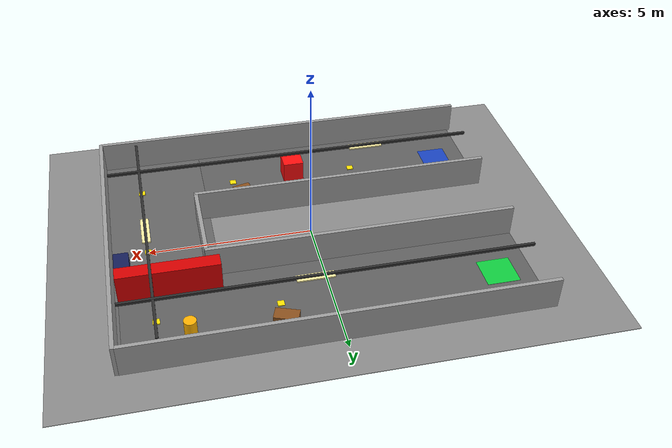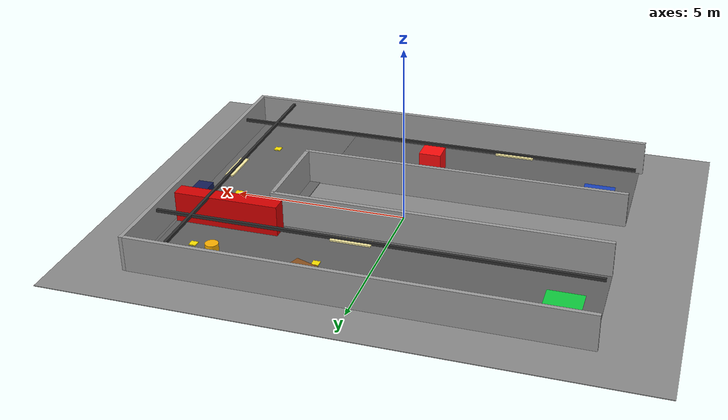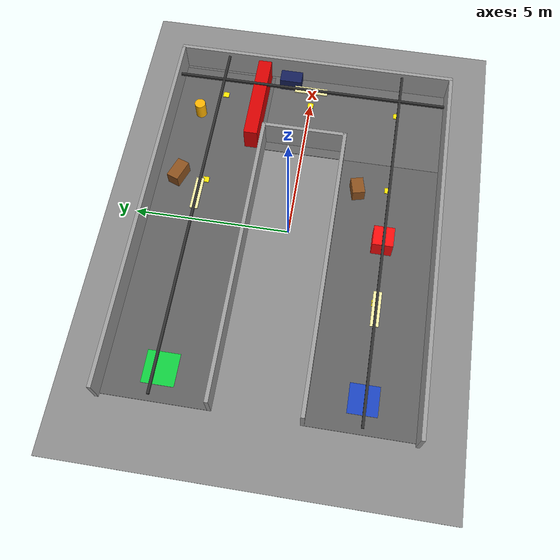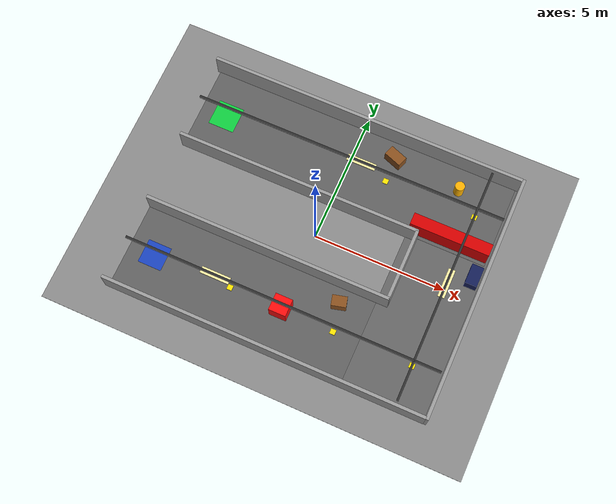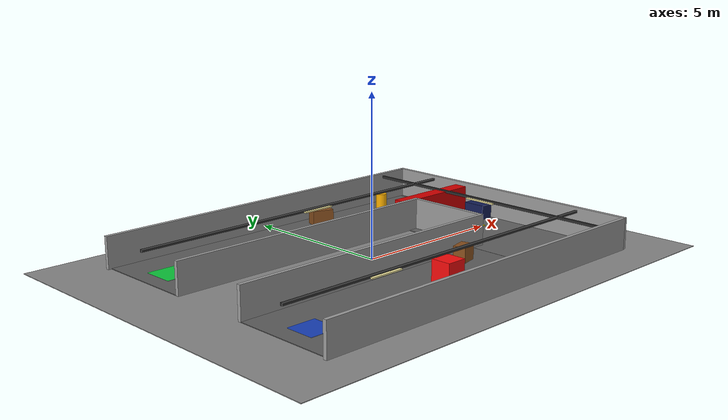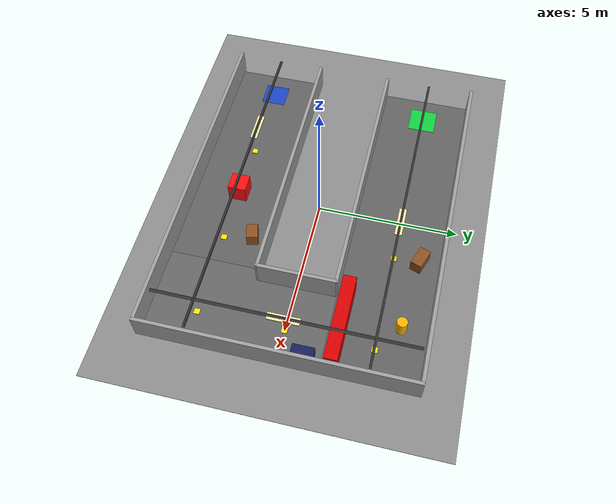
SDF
<sdf version='1.9'>
  <world name='shipyard_corridor_u_blocked'>
    <physics name='1ms' type='ignored'>
      <max_step_size>0.001</max_step_size>
      <real_time_factor>1</real_time_factor>
      <real_time_update_rate>1000</real_time_update_rate>
    </physics>
    <plugin name='ignition::gazebo::systems::Physics' filename='ignition-gazebo-physics-system'/>
    <plugin name='ignition::gazebo::systems::UserCommands' filename='ignition-gazebo-user-commands-system'/>
    <plugin name='ignition::gazebo::systems::SceneBroadcaster' filename='ignition-gazebo-scene-broadcaster-system'/>
    <plugin name='ignition::gazebo::systems::Sensors' filename='libignition-gazebo-sensors-system.so'>
      <render_engine>ogre2</render_engine>
    </plugin>
    <plugin name='ignition::gazebo::systems::Imu' filename='libignition-gazebo-imu-system.so'/>
    <gravity>0 0 -9.8</gravity>
    <magnetic_field>6e-06 2.3e-05 -4.2e-05</magnetic_field>
    <atmosphere type='adiabatic'/>
    <scene>
      <ambient>0.4 0.4 0.4 1</ambient>
      <background>0.7 0.7 0.7 1</background>
      <shadows>true</shadows>
    </scene>
    <model name='facility_floor'>
      <static>true</static>
      <pose>0 0 -0.01 0 -0 0</pose>
      <link name='link'>
        <collision name='collision'>
          <geometry>
            <box>
              <size>16 12 0.02</size>
            </box>
          </geometry>
          <surface>
            <friction>
              <ode/>
            </friction>
            <bounce/>
            <contact/>
          </surface>
        </collision>
        <visual name='visual'>
          <geometry>
            <box>
              <size>16 12 0.02</size>
            </box>
          </geometry>
          <material>
            <ambient>0.55 0.55 0.55 1</ambient>
            <diffuse>0.55 0.55 0.55 1</diffuse>
          </material>
        </visual>
        <pose>0 0 0 0 -0 0</pose>
        <inertial>
          <pose>0 0 0 0 -0 0</pose>
          <mass>1</mass>
          <inertia>
            <ixx>1</ixx>
            <ixy>0</ixy>
            <ixz>0</ixz>
            <iyy>1</iyy>
            <iyz>0</iyz>
            <izz>1</izz>
          </inertia>
        </inertial>
        <enable_wind>false</enable_wind>
      </link>
      <self_collide>false</self_collide>
    </model>
    <model name='bottom_corridor_floor'>
      <static>true</static>
      <pose>0 -3 0.005 0 -0 0</pose>
      <link name='link'>
        <collision name='collision'>
          <geometry>
            <box>
              <size>12 3.2 0.03</size>
            </box>
          </geometry>
          <surface>
            <friction>
              <ode/>
            </friction>
            <bounce/>
            <contact/>
          </surface>
        </collision>
        <visual name='visual'>
          <geometry>
            <box>
              <size>12 3.2 0.03</size>
            </box>
          </geometry>
          <material>
            <ambient>0.38 0.38 0.38 1</ambient>
            <diffuse>0.38 0.38 0.38 1</diffuse>
          </material>
        </visual>
        <pose>0 0 0 0 -0 0</pose>
        <inertial>
          <pose>0 0 0 0 -0 0</pose>
          <mass>1</mass>
          <inertia>
            <ixx>1</ixx>
            <ixy>0</ixy>
            <ixz>0</ixz>
            <iyy>1</iyy>
            <iyz>0</iyz>
            <izz>1</izz>
          </inertia>
        </inertial>
        <enable_wind>false</enable_wind>
      </link>
      <self_collide>false</self_collide>
    </model>
    <model name='right_turn_corridor_floor'>
      <static>true</static>
      <pose>4.57304 0 0.006 0 -0 0</pose>
      <link name='link'>
        <collision name='collision'>
          <geometry>
            <box>
              <size>3.2 9.2 0.03</size>
            </box>
          </geometry>
          <surface>
            <friction>
              <ode/>
            </friction>
            <bounce/>
            <contact/>
          </surface>
        </collision>
        <visual name='visual'>
          <geometry>
            <box>
              <size>3.2 9.2 0.03</size>
            </box>
          </geometry>
          <material>
            <ambient>0.4 0.4 0.4 1</ambient>
            <diffuse>0.4 0.4 0.4 1</diffuse>
          </material>
        </visual>
        <pose>0 0 0 0 -0 0</pose>
        <inertial>
          <pose>0 0 0 0 -0 0</pose>
          <mass>1</mass>
          <inertia>
            <ixx>1</ixx>
            <ixy>0</ixy>
            <ixz>0</ixz>
            <iyy>1</iyy>
            <iyz>0</iyz>
            <izz>1</izz>
          </inertia>
        </inertial>
        <enable_wind>false</enable_wind>
      </link>
      <self_collide>false</self_collide>
    </model>
    <model name='top_corridor_floor'>
      <static>true</static>
      <pose>0 3 0.007 0 -0 0</pose>
      <link name='link'>
        <collision name='collision'>
          <geometry>
            <box>
              <size>12 3.2 0.03</size>
            </box>
          </geometry>
          <surface>
            <friction>
              <ode/>
            </friction>
            <bounce/>
            <contact/>
          </surface>
        </collision>
        <visual name='visual'>
          <geometry>
            <box>
              <size>12 3.2 0.03</size>
            </box>
          </geometry>
          <material>
            <ambient>0.38 0.38 0.38 1</ambient>
            <diffuse>0.38 0.38 0.38 1</diffuse>
          </material>
        </visual>
        <pose>0 0 0 0 -0 0</pose>
        <inertial>
          <pose>0 0 0 0 -0 0</pose>
          <mass>1</mass>
          <inertia>
            <ixx>1</ixx>
            <ixy>0</ixy>
            <ixz>0</ixz>
            <iyy>1</iyy>
            <iyz>0</iyz>
            <izz>1</izz>
          </inertia>
        </inertial>
        <enable_wind>false</enable_wind>
      </link>
      <self_collide>false</self_collide>
    </model>
    <model name='bottom_outer_wall'>
      <static>true</static>
      <pose>0 -4.65 0.5 0 -0 0</pose>
      <link name='link'>
        <collision name='collision'>
          <geometry>
            <box>
              <size>12.2 0.12 1</size>
            </box>
          </geometry>
          <surface>
            <friction>
              <ode/>
            </friction>
            <bounce/>
            <contact/>
          </surface>
        </collision>
        <visual name='visual'>
          <geometry>
            <box>
              <size>12.2 0.12 1</size>
            </box>
          </geometry>
          <material>
            <ambient>0.62 0.62 0.62 1</ambient>
            <diffuse>0.62 0.62 0.62 1</diffuse>
          </material>
        </visual>
        <pose>0 0 0 0 -0 0</pose>
        <inertial>
          <pose>0 0 0 0 -0 0</pose>
          <mass>1</mass>
          <inertia>
            <ixx>1</ixx>
            <ixy>0</ixy>
            <ixz>0</ixz>
            <iyy>1</iyy>
            <iyz>0</iyz>
            <izz>1</izz>
          </inertia>
        </inertial>
        <enable_wind>false</enable_wind>
      </link>
      <self_collide>false</self_collide>
    </model>
    <model name='bottom_inner_wall'>
      <static>true</static>
      <pose>-1.3 -1.35 0.5 0 -0 0</pose>
      <link name='link'>
        <collision name='collision'>
          <geometry>
            <box>
              <size>9.4 0.12 1</size>
            </box>
          </geometry>
          <surface>
            <friction>
              <ode/>
            </friction>
            <bounce/>
            <contact/>
          </surface>
        </collision>
        <visual name='visual'>
          <geometry>
            <box>
              <size>9.4 0.12 1</size>
            </box>
          </geometry>
          <material>
            <ambient>0.62 0.62 0.62 1</ambient>
            <diffuse>0.62 0.62 0.62 1</diffuse>
          </material>
        </visual>
        <pose>0 0 0 0 -0 0</pose>
        <inertial>
          <pose>0 0 0 0 -0 0</pose>
          <mass>1</mass>
          <inertia>
            <ixx>1</ixx>
            <ixy>0</ixy>
            <ixz>0</ixz>
            <iyy>1</iyy>
            <iyz>0</iyz>
            <izz>1</izz>
          </inertia>
        </inertial>
        <enable_wind>false</enable_wind>
      </link>
      <self_collide>false</self_collide>
    </model>
    <model name='right_outer_wall'>
      <static>true</static>
      <pose>6.14462 0 0.5 0 -0 0</pose>
      <link name='link'>
        <collision name='collision'>
          <geometry>
            <box>
              <size>0.12 9.4 1</size>
            </box>
          </geometry>
          <surface>
            <friction>
              <ode/>
            </friction>
            <bounce/>
            <contact/>
          </surface>
        </collision>
        <visual name='visual'>
          <geometry>
            <box>
              <size>0.12 9.4 1</size>
            </box>
          </geometry>
          <material>
            <ambient>0.62 0.62 0.62 1</ambient>
            <diffuse>0.62 0.62 0.62 1</diffuse>
          </material>
        </visual>
        <pose>0 0 0 0 -0 0</pose>
        <inertial>
          <pose>0 0 0 0 -0 0</pose>
          <mass>1</mass>
          <inertia>
            <ixx>1</ixx>
            <ixy>0</ixy>
            <ixz>0</ixz>
            <iyy>1</iyy>
            <iyz>0</iyz>
            <izz>1</izz>
          </inertia>
        </inertial>
        <enable_wind>false</enable_wind>
      </link>
      <self_collide>false</self_collide>
    </model>
    <model name='right_inner_wall'>
      <static>true</static>
      <pose>3.35 0 0.5 0 -0 0</pose>
      <link name='link'>
        <collision name='collision'>
          <geometry>
            <box>
              <size>0.12 2.7 1</size>
            </box>
          </geometry>
          <surface>
            <friction>
              <ode/>
            </friction>
            <bounce/>
            <contact/>
          </surface>
        </collision>
        <visual name='visual'>
          <geometry>
            <box>
              <size>0.12 2.7 1</size>
            </box>
          </geometry>
          <material>
            <ambient>0.62 0.62 0.62 1</ambient>
            <diffuse>0.62 0.62 0.62 1</diffuse>
          </material>
        </visual>
        <pose>0 0 0 0 -0 0</pose>
        <inertial>
          <pose>0 0 0 0 -0 0</pose>
          <mass>1</mass>
          <inertia>
            <ixx>1</ixx>
            <ixy>0</ixy>
            <ixz>0</ixz>
            <iyy>1</iyy>
            <iyz>0</iyz>
            <izz>1</izz>
          </inertia>
        </inertial>
        <enable_wind>false</enable_wind>
      </link>
      <self_collide>false</self_collide>
    </model>
    <model name='top_inner_wall'>
      <static>true</static>
      <pose>-1.3 1.35 0.5 0 -0 0</pose>
      <link name='link'>
        <collision name='collision'>
          <geometry>
            <box>
              <size>9.4 0.12 1</size>
            </box>
          </geometry>
          <surface>
            <friction>
              <ode/>
            </friction>
            <bounce/>
            <contact/>
          </surface>
        </collision>
        <visual name='visual'>
          <geometry>
            <box>
              <size>9.4 0.12 1</size>
            </box>
          </geometry>
          <material>
            <ambient>0.62 0.62 0.62 1</ambient>
            <diffuse>0.62 0.62 0.62 1</diffuse>
          </material>
        </visual>
        <pose>0 0 0 0 -0 0</pose>
        <inertial>
          <pose>0 0 0 0 -0 0</pose>
          <mass>1</mass>
          <inertia>
            <ixx>1</ixx>
            <ixy>0</ixy>
            <ixz>0</ixz>
            <iyy>1</iyy>
            <iyz>0</iyz>
            <izz>1</izz>
          </inertia>
        </inertial>
        <enable_wind>false</enable_wind>
      </link>
      <self_collide>false</self_collide>
    </model>
    <model name='top_outer_wall'>
      <static>true</static>
      <pose>0 4.65 0.5 0 -0 0</pose>
      <link name='link'>
        <collision name='collision'>
          <geometry>
            <box>
              <size>12.2 0.12 1</size>
            </box>
          </geometry>
          <surface>
            <friction>
              <ode/>
            </friction>
            <bounce/>
            <contact/>
          </surface>
        </collision>
        <visual name='visual'>
          <geometry>
            <box>
              <size>12.2 0.12 1</size>
            </box>
          </geometry>
          <material>
            <ambient>0.62 0.62 0.62 1</ambient>
            <diffuse>0.62 0.62 0.62 1</diffuse>
          </material>
        </visual>
        <pose>0 0 0 0 -0 0</pose>
        <inertial>
          <pose>0 0 0 0 -0 0</pose>
          <mass>1</mass>
          <inertia>
            <ixx>1</ixx>
            <ixy>0</ixy>
            <ixz>0</ixz>
            <iyy>1</iyy>
            <iyz>0</iyz>
            <izz>1</izz>
          </inertia>
        </inertial>
        <enable_wind>false</enable_wind>
      </link>
      <self_collide>false</self_collide>
    </model>
    <model name='overhead_lighting_group'>
      <static>true</static>
      <pose>0 0 -0.449196 0 -0 0</pose>
      <link name='overhead_beam_bottom'>
        <pose>0 -3 1.35 0 -0 0</pose>
        <visual name='visual'>
          <geometry>
            <box>
              <size>12 0.08 0.08</size>
            </box>
          </geometry>
          <material>
            <ambient>0.18 0.18 0.18 1</ambient>
            <diffuse>0.18 0.18 0.18 1</diffuse>
          </material>
        </visual>
        <inertial>
          <pose>0 0 0 0 -0 0</pose>
          <mass>1</mass>
          <inertia>
            <ixx>1</ixx>
            <ixy>0</ixy>
            <ixz>0</ixz>
            <iyy>1</iyy>
            <iyz>0</iyz>
            <izz>1</izz>
          </inertia>
        </inertial>
        <enable_wind>false</enable_wind>
      </link>
      <link name='overhead_beam_vertical'>
        <pose>5 0 1.35 0 -0 1.5708</pose>
        <visual name='visual'>
          <geometry>
            <box>
              <size>9 0.08 0.08</size>
            </box>
          </geometry>
          <material>
            <ambient>0.18 0.18 0.18 1</ambient>
            <diffuse>0.18 0.18 0.18 1</diffuse>
          </material>
        </visual>
        <inertial>
          <pose>0 0 0 0 -0 0</pose>
          <mass>1</mass>
          <inertia>
            <ixx>1</ixx>
            <ixy>0</ixy>
            <ixz>0</ixz>
            <iyy>1</iyy>
            <iyz>0</iyz>
            <izz>1</izz>
          </inertia>
        </inertial>
        <enable_wind>false</enable_wind>
      </link>
      <link name='overhead_beam_top'>
        <pose>0 3 1.35 0 -0 0</pose>
        <visual name='visual'>
          <geometry>
            <box>
              <size>12 0.08 0.08</size>
            </box>
          </geometry>
          <material>
            <ambient>0.18 0.18 0.18 1</ambient>
            <diffuse>0.18 0.18 0.18 1</diffuse>
          </material>
        </visual>
        <inertial>
          <pose>0 0 0 0 -0 0</pose>
          <mass>1</mass>
          <inertia>
            <ixx>1</ixx>
            <ixy>0</ixy>
            <ixz>0</ixz>
            <iyy>1</iyy>
            <iyz>0</iyz>
            <izz>1</izz>
          </inertia>
        </inertial>
        <enable_wind>false</enable_wind>
      </link>
      <link name='light_panel_1'>
        <pose>-2.5 -3 1.32 0 -0 0</pose>
        <visual name='visual'>
          <geometry>
            <box>
              <size>1.1 0.25 0.04</size>
            </box>
          </geometry>
          <material>
            <ambient>1 0.95 0.65 1</ambient>
            <diffuse>1 0.95 0.65 1</diffuse>
          </material>
        </visual>
        <inertial>
          <pose>0 0 0 0 -0 0</pose>
          <mass>1</mass>
          <inertia>
            <ixx>1</ixx>
            <ixy>0</ixy>
            <ixz>0</ixz>
            <iyy>1</iyy>
            <iyz>0</iyz>
            <izz>1</izz>
          </inertia>
        </inertial>
        <enable_wind>false</enable_wind>
      </link>
      <link name='light_panel_2'>
        <pose>5 0 1.32 0 -0 1.5708</pose>
        <visual name='visual'>
          <geometry>
            <box>
              <size>1.1 0.25 0.04</size>
            </box>
          </geometry>
          <material>
            <ambient>1 0.95 0.65 1</ambient>
            <diffuse>1 0.95 0.65 1</diffuse>
          </material>
        </visual>
        <inertial>
          <pose>0 0 0 0 -0 0</pose>
          <mass>1</mass>
          <inertia>
            <ixx>1</ixx>
            <ixy>0</ixy>
            <ixz>0</ixz>
            <iyy>1</iyy>
            <iyz>0</iyz>
            <izz>1</izz>
          </inertia>
        </inertial>
        <enable_wind>false</enable_wind>
      </link>
      <link name='light_panel_3'>
        <pose>0.5 3 1.32 0 -0 0</pose>
        <visual name='visual'>
          <geometry>
            <box>
              <size>1.1 0.25 0.04</size>
            </box>
          </geometry>
          <material>
            <ambient>1 0.95 0.65 1</ambient>
            <diffuse>1 0.95 0.65 1</diffuse>
          </material>
        </visual>
        <inertial>
          <pose>0 0 0 0 -0 0</pose>
          <mass>1</mass>
          <inertia>
            <ixx>1</ixx>
            <ixy>0</ixy>
            <ixz>0</ixz>
            <iyy>1</iyy>
            <iyz>0</iyz>
            <izz>1</izz>
          </inertia>
        </inertial>
        <enable_wind>false</enable_wind>
      </link>
      <self_collide>false</self_collide>
    </model>
    <model name='start_zone_marker'>
      <static>true</static>
      <pose>-5 -3 0.025 0 -0 0</pose>
      <link name='link'>
        <visual name='visual'>
          <geometry>
            <box>
              <size>0.9 0.9 0.02</size>
            </box>
          </geometry>
          <material>
            <ambient>0 0.25 1 0.65</ambient>
            <diffuse>0 0.25 1 0.65</diffuse>
          </material>
        </visual>
        <pose>0 0 0 0 -0 0</pose>
        <inertial>
          <pose>0 0 0 0 -0 0</pose>
          <mass>1</mass>
          <inertia>
            <ixx>1</ixx>
            <ixy>0</ixy>
            <ixz>0</ixz>
            <iyy>1</iyy>
            <iyz>0</iyz>
            <izz>1</izz>
          </inertia>
        </inertial>
        <enable_wind>false</enable_wind>
      </link>
      <self_collide>false</self_collide>
    </model>
    <model name='inspection_endpoint_marker'>
      <static>true</static>
      <pose>-5 3 0.025 0 -0 0</pose>
      <link name='link'>
        <visual name='visual'>
          <geometry>
            <box>
              <size>1 1 0.02</size>
            </box>
          </geometry>
          <material>
            <ambient>0 1 0.25 0.75</ambient>
            <diffuse>0 1 0.25 0.75</diffuse>
          </material>
        </visual>
        <pose>0 0 0 0 -0 0</pose>
        <inertial>
          <pose>0 0 0 0 -0 0</pose>
          <mass>1</mass>
          <inertia>
            <ixx>1</ixx>
            <ixy>0</ixy>
            <ixz>0</ixz>
            <iyy>1</iyy>
            <iyz>0</iyz>
            <izz>1</izz>
          </inertia>
        </inertial>
        <enable_wind>false</enable_wind>
      </link>
      <self_collide>false</self_collide>
    </model>
    <model name='wp_1'>
      <static>true</static>
      <pose>-2 -3 0.035 0 -0 0</pose>
      <link name='link'>
        <visual name='visual'>
          <geometry>
            <box>
              <size>0.2 0.2 0.03</size>
            </box>
          </geometry>
          <material>
            <ambient>1 0.9 0 1</ambient>
            <diffuse>1 0.9 0 1</diffuse>
          </material>
        </visual>
        <pose>0 0 0 0 -0 0</pose>
        <inertial>
          <pose>0 0 0 0 -0 0</pose>
          <mass>1</mass>
          <inertia>
            <ixx>1</ixx>
            <ixy>0</ixy>
            <ixz>0</ixz>
            <iyy>1</iyy>
            <iyz>0</iyz>
            <izz>1</izz>
          </inertia>
        </inertial>
        <enable_wind>false</enable_wind>
      </link>
      <self_collide>false</self_collide>
    </model>
    <model name='wp_2'>
      <static>true</static>
      <pose>2 -3 0.035 0 -0 0</pose>
      <link name='link'>
        <visual name='visual'>
          <geometry>
            <box>
              <size>0.2 0.2 0.03</size>
            </box>
          </geometry>
          <material>
            <ambient>1 0.9 0 1</ambient>
            <diffuse>1 0.9 0 1</diffuse>
          </material>
        </visual>
        <pose>0 0 0 0 -0 0</pose>
        <inertial>
          <pose>0 0 0 0 -0 0</pose>
          <mass>1</mass>
          <inertia>
            <ixx>1</ixx>
            <ixy>0</ixy>
            <ixz>0</ixz>
            <iyy>1</iyy>
            <iyz>0</iyz>
            <izz>1</izz>
          </inertia>
        </inertial>
        <enable_wind>false</enable_wind>
      </link>
      <self_collide>false</self_collide>
    </model>
    <model name='wp_3_turn'>
      <static>true</static>
      <pose>5 -3 0.035 0 -0 0</pose>
      <link name='link'>
        <visual name='visual'>
          <geometry>
            <box>
              <size>0.2 0.2 0.03</size>
            </box>
          </geometry>
          <material>
            <ambient>1 0.9 0 1</ambient>
            <diffuse>1 0.9 0 1</diffuse>
          </material>
        </visual>
        <pose>0 0 0 0 -0 0</pose>
        <inertial>
          <pose>0 0 0 0 -0 0</pose>
          <mass>1</mass>
          <inertia>
            <ixx>1</ixx>
            <ixy>0</ixy>
            <ixz>0</ixz>
            <iyy>1</iyy>
            <iyz>0</iyz>
            <izz>1</izz>
          </inertia>
        </inertial>
        <enable_wind>false</enable_wind>
      </link>
      <self_collide>false</self_collide>
    </model>
    <model name='wp_4'>
      <static>true</static>
      <pose>5 0 0.035 0 -0 0</pose>
      <link name='link'>
        <visual name='visual'>
          <geometry>
            <box>
              <size>0.2 0.2 0.03</size>
            </box>
          </geometry>
          <material>
            <ambient>1 0.9 0 1</ambient>
            <diffuse>1 0.9 0 1</diffuse>
          </material>
        </visual>
        <pose>0 0 0 0 -0 0</pose>
        <inertial>
          <pose>0 0 0 0 -0 0</pose>
          <mass>1</mass>
          <inertia>
            <ixx>1</ixx>
            <ixy>0</ixy>
            <ixz>0</ixz>
            <iyy>1</iyy>
            <iyz>0</iyz>
            <izz>1</izz>
          </inertia>
        </inertial>
        <enable_wind>false</enable_wind>
      </link>
      <self_collide>false</self_collide>
    </model>
    <model name='wp_5_turn'>
      <static>true</static>
      <pose>5 3 0.035 0 -0 0</pose>
      <link name='link'>
        <visual name='visual'>
          <geometry>
            <box>
              <size>0.2 0.2 0.03</size>
            </box>
          </geometry>
          <material>
            <ambient>1 0.9 0 1</ambient>
            <diffuse>1 0.9 0 1</diffuse>
          </material>
        </visual>
        <pose>0 0 0 0 -0 0</pose>
        <inertial>
          <pose>0 0 0 0 -0 0</pose>
          <mass>1</mass>
          <inertia>
            <ixx>1</ixx>
            <ixy>0</ixy>
            <ixz>0</ixz>
            <iyy>1</iyy>
            <iyz>0</iyz>
            <izz>1</izz>
          </inertia>
        </inertial>
        <enable_wind>false</enable_wind>
      </link>
      <self_collide>false</self_collide>
    </model>
    <model name='wp_6'>
      <static>true</static>
      <pose>1.5 3 0.035 0 -0 0</pose>
      <link name='link'>
        <visual name='visual'>
          <geometry>
            <box>
              <size>0.2 0.2 0.03</size>
            </box>
          </geometry>
          <material>
            <ambient>1 0.9 0 1</ambient>
            <diffuse>1 0.9 0 1</diffuse>
          </material>
        </visual>
        <pose>0 0 0 0 -0 0</pose>
        <inertial>
          <pose>0 0 0 0 -0 0</pose>
          <mass>1</mass>
          <inertia>
            <ixx>1</ixx>
            <ixy>0</ixy>
            <ixz>0</ixz>
            <iyy>1</iyy>
            <iyz>0</iyz>
            <izz>1</izz>
          </inertia>
        </inertial>
        <enable_wind>false</enable_wind>
      </link>
      <self_collide>false</self_collide>
    </model>
    <model name='avoidable_obstruction_red_block'>
      <static>true</static>
      <pose>0 -3 0.35 0 -0 0</pose>
      <link name='link'>
        <collision name='collision'>
          <geometry>
            <box>
              <size>0.65 0.65 0.7</size>
            </box>
          </geometry>
          <surface>
            <friction>
              <ode/>
            </friction>
            <bounce/>
            <contact/>
          </surface>
        </collision>
        <visual name='visual'>
          <geometry>
            <box>
              <size>0.65 0.65 0.7</size>
            </box>
          </geometry>
          <material>
            <ambient>1 0.05 0.05 1</ambient>
            <diffuse>1 0.05 0.05 1</diffuse>
          </material>
        </visual>
        <pose>0 0 0 0 -0 0</pose>
        <inertial>
          <pose>0 0 0 0 -0 0</pose>
          <mass>1</mass>
          <inertia>
            <ixx>1</ixx>
            <ixy>0</ixy>
            <ixz>0</ixz>
            <iyy>1</iyy>
            <iyz>0</iyz>
            <izz>1</izz>
          </inertia>
        </inertial>
        <enable_wind>false</enable_wind>
      </link>
      <self_collide>false</self_collide>
    </model>
    <model name='left_side_crate_bottom'>
      <static>true</static>
      <pose>1.8 -2 0.25 0 -0 0.25</pose>
      <link name='link'>
        <collision name='collision'>
          <geometry>
            <box>
              <size>0.55 0.4 0.5</size>
            </box>
          </geometry>
          <surface>
            <friction>
              <ode/>
            </friction>
            <bounce/>
            <contact/>
          </surface>
        </collision>
        <visual name='visual'>
          <geometry>
            <box>
              <size>0.55 0.4 0.5</size>
            </box>
          </geometry>
          <material>
            <ambient>0.55 0.32 0.12 1</ambient>
            <diffuse>0.55 0.32 0.12 1</diffuse>
          </material>
        </visual>
        <pose>0 0 0 0 -0 0</pose>
        <inertial>
          <pose>0 0 0 0 -0 0</pose>
          <mass>1</mass>
          <inertia>
            <ixx>1</ixx>
            <ixy>0</ixy>
            <ixz>0</ixz>
            <iyy>1</iyy>
            <iyz>0</iyz>
            <izz>1</izz>
          </inertia>
        </inertial>
        <enable_wind>false</enable_wind>
      </link>
      <self_collide>false</self_collide>
    </model>
    <model name='maintenance_cart_vertical'>
      <static>true</static>
      <pose>5.8 0.8 0.25 0 -0 1.5708</pose>
      <link name='link'>
        <collision name='collision'>
          <geometry>
            <box>
              <size>0.75 0.45 0.5</size>
            </box>
          </geometry>
          <surface>
            <friction>
              <ode/>
            </friction>
            <bounce/>
            <contact/>
          </surface>
        </collision>
        <visual name='visual'>
          <geometry>
            <box>
              <size>0.75 0.45 0.5</size>
            </box>
          </geometry>
          <material>
            <ambient>0.08 0.12 0.35 1</ambient>
            <diffuse>0.08 0.12 0.35 1</diffuse>
          </material>
        </visual>
        <pose>0 0 0 0 -0 0</pose>
        <inertial>
          <pose>0 0 0 0 -0 0</pose>
          <mass>1</mass>
          <inertia>
            <ixx>1</ixx>
            <ixy>0</ixy>
            <ixz>0</ixz>
            <iyy>1</iyy>
            <iyz>0</iyz>
            <izz>1</izz>
          </inertia>
        </inertial>
        <enable_wind>false</enable_wind>
      </link>
      <self_collide>false</self_collide>
    </model>
    <model name='right_side_crate_top'>
      <static>true</static>
      <pose>1.5 3.9 0.25 0 0 -0.35</pose>
      <link name='link'>
        <collision name='collision'>
          <geometry>
            <box>
              <size>0.7 0.4 0.5</size>
            </box>
          </geometry>
          <surface>
            <friction>
              <ode/>
            </friction>
            <bounce/>
            <contact/>
          </surface>
        </collision>
        <visual name='visual'>
          <geometry>
            <box>
              <size>0.7 0.4 0.5</size>
            </box>
          </geometry>
          <material>
            <ambient>0.55 0.32 0.12 1</ambient>
            <diffuse>0.55 0.32 0.12 1</diffuse>
          </material>
        </visual>
        <pose>0 0 0 0 -0 0</pose>
        <inertial>
          <pose>0 0 0 0 -0 0</pose>
          <mass>1</mass>
          <inertia>
            <ixx>1</ixx>
            <ixy>0</ixy>
            <ixz>0</ixz>
            <iyy>1</iyy>
            <iyz>0</iyz>
            <izz>1</izz>
          </inertia>
        </inertial>
        <enable_wind>false</enable_wind>
      </link>
      <self_collide>false</self_collide>
    </model>
    <model name='maintenance_cone_top'>
      <static>true</static>
      <pose>4.1 3.7 0.3 0 -0 0</pose>
      <link name='link'>
        <collision name='collision'>
          <geometry>
            <cylinder>
              <radius>0.17999999999999999</radius>
              <length>0.59999999999999998</length>
            </cylinder>
          </geometry>
          <surface>
            <friction>
              <ode/>
            </friction>
            <bounce/>
            <contact/>
          </surface>
        </collision>
        <visual name='visual'>
          <geometry>
            <cylinder>
              <radius>0.17999999999999999</radius>
              <length>0.59999999999999998</length>
            </cylinder>
          </geometry>
          <material>
            <ambient>1 0.7 0 1</ambient>
            <diffuse>1 0.7 0 1</diffuse>
          </material>
        </visual>
        <pose>0 0 0 0 -0 0</pose>
        <inertial>
          <pose>0 0 0 0 -0 0</pose>
          <mass>1</mass>
          <inertia>
            <ixx>1</ixx>
            <ixy>0</ixy>
            <ixz>0</ixz>
            <iyy>1</iyy>
            <iyz>0</iyz>
            <izz>1</izz>
          </inertia>
        </inertial>
        <enable_wind>false</enable_wind>
      </link>
      <self_collide>false</self_collide>
    </model>
    <model name='blocked_route_barrier'>
      <static>true</static>
      <pose>4.49739 1.75 0.45 0 -0 0</pose>
      <link name='link'>
        <collision name='collision'>
          <geometry>
            <box>
              <size>3 0.45 0.9</size>
            </box>
          </geometry>
          <surface>
            <friction>
              <ode/>
            </friction>
            <bounce/>
            <contact/>
          </surface>
        </collision>
        <visual name='visual'>
          <geometry>
            <box>
              <size>3 0.45 0.9</size>
            </box>
          </geometry>
          <material>
            <ambient>0.85 0 0 1</ambient>
            <diffuse>0.85 0 0 1</diffuse>
          </material>
        </visual>
        <pose>0 0 0 0 -0 0</pose>
        <inertial>
          <pose>0 0 0 0 -0 0</pose>
          <mass>1</mass>
          <inertia>
            <ixx>1</ixx>
            <ixy>0</ixy>
            <ixz>0</ixz>
            <iyy>1</iyy>
            <iyz>0</iyz>
            <izz>1</izz>
          </inertia>
        </inertial>
        <enable_wind>false</enable_wind>
      </link>
      <self_collide>false</self_collide>
    </model>
    <light name='sun' type='directional'>
      <pose>0 0 12 0 -0 0</pose>
      <cast_shadows>true</cast_shadows>
      <intensity>1</intensity>
      <direction>-0.4 0.2 -0.9</direction>
      <diffuse>0.85 0.85 0.85 1</diffuse>
      <specular>0.25 0.25 0.25 1</specular>
      <attenuation>
        <range>10</range>
        <linear>1</linear>
        <constant>1</constant>
        <quadratic>0</quadratic>
      </attenuation>
      <spot>
        <inner_angle>0</inner_angle>
        <outer_angle>0</outer_angle>
        <falloff>0</falloff>
      </spot>
    </light>
  </world>
</sdf>
